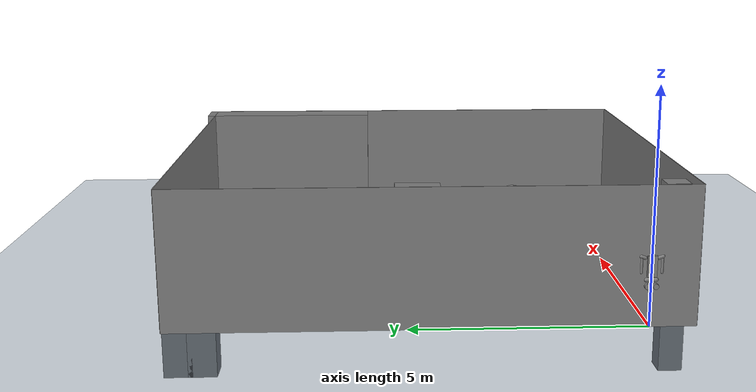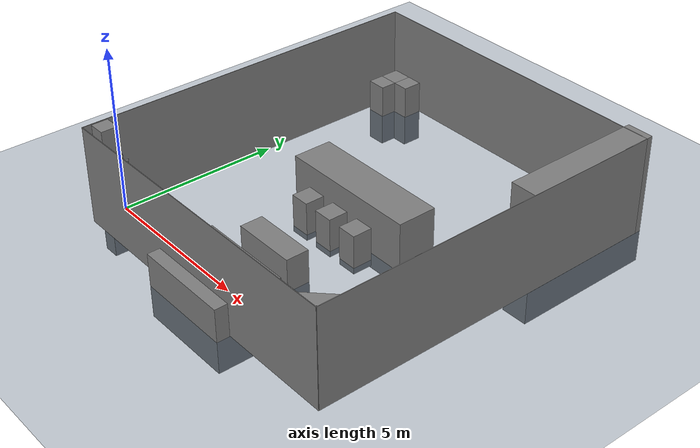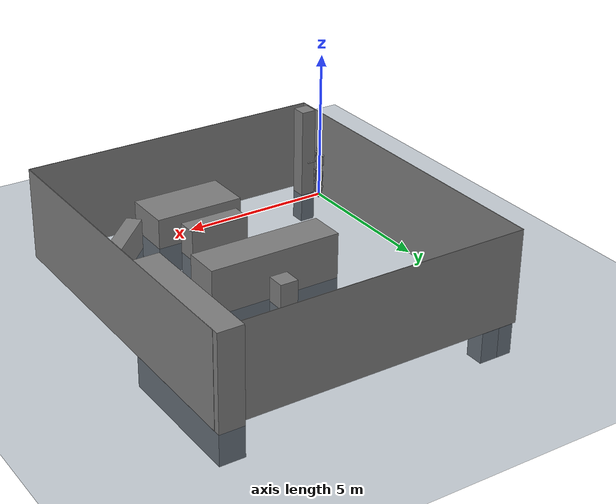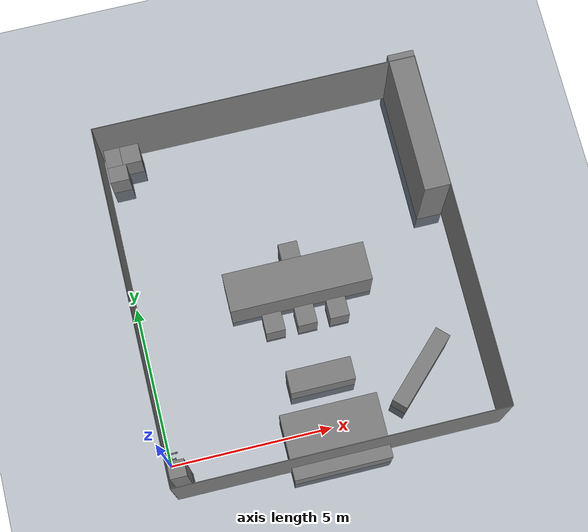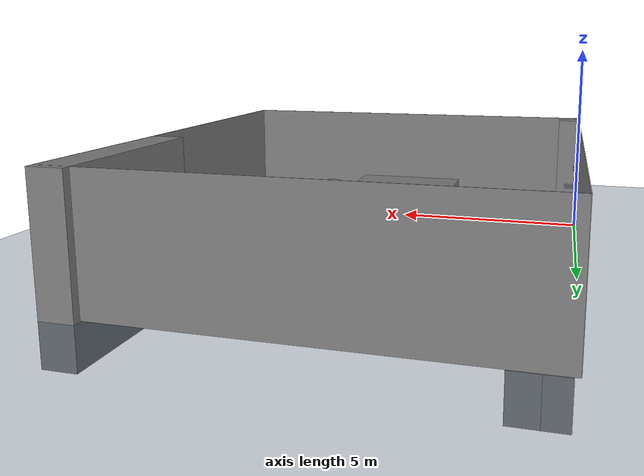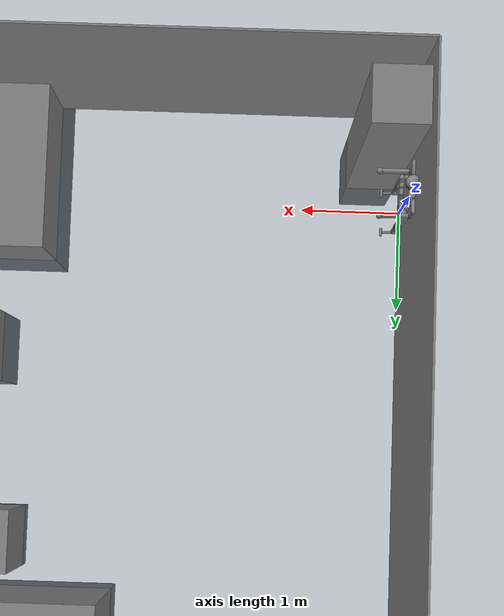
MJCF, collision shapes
<mujoco model="h1 scene">
  <include file="h1.xml"/>

  <statistic center="0 0 1" extent="1.8"/>

  <visual>
    <headlight diffuse="0.6 0.6 0.6" ambient="0.3 0.3 0.3" specular="0 0 0"/>
    <rgba haze="0.15 0.25 0.35 1"/>
    <global azimuth="160" elevation="-20"/>
  </visual>

  <asset>
    <texture type="skybox" builtin="gradient" rgb1="0.3 0.5 0.7" rgb2="0 0 0" width="512" height="3072"/>
    <texture type="2d" name="groundplane" builtin="checker" mark="edge" rgb1="0.2 0.3 0.4" rgb2="0.1 0.2 0.3"
      markrgb="0.8 0.8 0.8" width="300" height="300"/>
    <material name="groundplane" texture="groundplane" texuniform="true" texrepeat="5 5" reflectance="0.2"/>
  </asset>

  <worldbody>
    <light pos="0 0 3.5" dir="0 0 -1" directional="true"/>
    <geom name="floor" size="0 0 0.05" type="plane" material="groundplane"/>

    <geom name="wall1" type="box" size="0.01 5.5 1.5" pos="10 4.5 1.5"/> <!-- right wall -->
    <geom name="wall2" type="box" size="0.01 5.5 1.5" pos="-0 4.5 1.5"/> <!-- left wall-->
    <geom name="wall3" type="box" size="5 0.01 1.5" pos="5 -1 1.5"/> <!-- low wall -->
    <geom name="wall4" type="box" size="5 0.01 1.5" pos="5 10 1.5"/> <!-- high wall -->

    <geom name="sofa_cover" type="box" size="1.5 1.0 1" pos="5 -0.4 0"/>
    <geom name="side_table2_cover" type="box" size="1.0 0.35 1.0" pos="5 1.5 0"/>
    <geom name="side_table3_cover" type="box" size="1.3 0.25 1.0" pos="8 1 0" euler="0 0 0.785398"/>
    <geom name="table2_cover" type="box" size="2.2 0.6 1.0" pos="5 4.5 0.5"/>
    <geom name="book_shelf_cover" type="box" size="0.4 2.2 2.0" pos="9.6 8.0 1.0"/>
    <geom name="pot1_cover" type="box" size="0.3 0.3 1.0" pos="0.4 9.7 0"/>
    <geom name="pot2_cover" type="box" size="0.3 0.3 1.0" pos="0.9 9.7 0"/>
    <geom name="pot3_cover" type="box" size="0.3 0.3 1.0" pos="0.4 9.2 0"/>
    <geom name="coat_hanger_cover" type="box" size="0.25 0.25 2" pos="0.3 -0.5 1"/>

    <geom name="chair1_cover" type="box" size="0.3 0.3 0.6" pos="4 3.4 0.4"/>
    <geom name="chair2_cover" type="box" size="0.3 0.3 0.6" pos="5 3.4 0.4"/>
    <geom name="chair3_cover" type="box" size="0.3 0.3 0.6" pos="6 3.4 0.4"/>
    <geom name="boss_chair_cover" type="box" size="0.3 0.3 0.8" pos="5 5.5 0"/>

  </worldbody>

  <keyframe>
    <key name="home"
      qpos="
    1.5 0 0.98
    0.7071068 0 0 0.7071068
    0 0 -0.4 0.8 -0.4
    0 0 -0.4 0.8 -0.4
    0
    0 0 0 0
    0 0 0 0"/>
  </keyframe>
</mujoco>

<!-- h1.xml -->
<mujoco model="h1">
  <compiler angle="radian" meshdir="assets" autolimits="true"/>

  <statistic meansize="0.05"/>

  <default>
    <default class="h1">
      <joint damping="1" armature="0.1"/>
      <default class="visual">
        <geom type="mesh" contype="0" conaffinity="0" group="2" material="black"/>
      </default>
      <default class="collision">
        <geom group="3" mass="0" density="0"/>
        <default class="foot">
          <geom type="capsule" size=".014"/>
          <default class="foot1">
            <geom fromto="-.035 0 -0.056 .02 0 -0.045"/>
          </default>
          <default class="foot2">
            <geom fromto=".02 0 -0.045 .115 0 -0.056"/>
          </default>
          <default class="foot3">
            <geom fromto=".14 -.03 -0.056 .14 .03 -0.056"/>
          </default>
        </default>
      </default>
      <site size="0.001" rgba="0.5 0.5 0.5 0.3" group="4"/>
    </default>
  </default>

  <asset>
    <material name="black" rgba="0.1 0.1 0.1 1"/>
    <material name="white" rgba="1 1 1 1"/>

    <mesh file="pelvis.stl"/>
    <mesh file="left_hip_yaw_link.stl"/>
    <mesh file="left_hip_roll_link.stl"/>
    <mesh file="left_hip_pitch_link.stl"/>
    <mesh file="left_knee_link.stl"/>
    <mesh file="left_ankle_link.stl"/>
    <mesh file="right_hip_yaw_link.stl"/>
    <mesh file="right_hip_roll_link.stl"/>
    <mesh file="right_hip_pitch_link.stl"/>
    <mesh file="right_knee_link.stl"/>
    <mesh file="right_ankle_link.stl"/>
    <mesh file="torso_link.stl"/>
    <mesh file="left_shoulder_pitch_link.stl"/>
    <mesh file="left_shoulder_roll_link.stl"/>
    <mesh file="left_shoulder_yaw_link.stl"/>
    <mesh file="left_elbow_link.stl"/>
    <mesh file="right_shoulder_pitch_link.stl"/>
    <mesh file="right_shoulder_roll_link.stl"/>
    <mesh file="right_shoulder_yaw_link.stl"/>
    <mesh file="right_elbow_link.stl"/>
    <mesh file="logo_link.stl"/>
  </asset>

  <worldbody>
    <light mode="targetbodycom" target="torso_link" pos="2 0 2.5"/>
    <body name="pelvis" pos="0 0 1.06" childclass="h1">
      <!-- Added the following line with respect to the mujoco_menagerie unutree H1 in order to be able to create the body_velocimeter sensor  -->
      <site name="com" pos="0 0 0" rgba="1 0 0 0" size="0.01"/>
      <camera name="cam_default" pos="2 3 0.8" mode="trackcom" xyaxes="-1 0.5 0 -0.2 -0.2 1"/>

      <inertial pos="-0.0002 4e-05 -0.04522" quat="0.498303 0.499454 -0.500496 0.501741" mass="5.39"
        diaginertia="0.0490211 0.0445821 0.00824619"/>
      <freejoint/>
      <geom class="visual" mesh="pelvis"/>
      <body name="left_hip_yaw_link" pos="0 0.0875 -0.1742">
        <inertial pos="-0.04923 0.0001 0.0072" quat="0.69699 0.219193 0.233287 0.641667" mass="2.244"
          diaginertia="0.00304494 0.00296885 0.00189201"/>
        <joint name="left_hip_yaw" axis="0 0 1" range="-0.43 0.43"/>
        <geom class="visual" mesh="left_hip_yaw_link"/>
        <geom size="0.06 0.035" pos="-0.067 0 0" quat="0.707123 0 0.70709 0" type="cylinder" class="collision"/>
        <body name="left_hip_roll_link" pos="0.039468 0 0">
          <inertial pos="-0.0058 -0.00319 -9e-05" quat="0.0438242 0.70721 -0.0729075 0.701867" mass="2.232"
            diaginertia="0.00243264 0.00225325 0.00205492"/>
          <joint name="left_hip_roll" axis="1 0 0" range="-0.43 0.43"/>
          <geom class="visual" mesh="left_hip_roll_link"/>
          <geom class="collision" type="cylinder" size="0.05 0.03" quat="1 1 0 0" pos="0 -0.02 0"/>
          <body name="left_hip_pitch_link" pos="0 0.11536 0">
            <inertial pos="0.00746 -0.02346 -0.08193" quat="0.979828 0.0513522 -0.0169854 -0.192382" mass="4.152"
              diaginertia="0.0829503 0.0821457 0.00510909"/>
            <joint name="left_hip_pitch" axis="0 1 0" range="-1.57 1.57"/>
            <geom class="visual" mesh="left_hip_pitch_link"/>
            <geom class="collision" type="capsule" size="0.03" fromto="0.02 0 -0.4 -0.02 0 0.02"/>
            <geom class="collision" type="capsule" size="0.03" fromto="0.02 0 -0.4 0.02 0 0.02"/>
            <geom class="collision" type="cylinder" size="0.05 0.02" quat="1 1 0 0" pos="0 -0.07 0"/>
            <body name="left_knee_link" pos="0 0 -0.4">
              <inertial pos="-0.00136 -0.00512 -0.1384" quat="0.626132 -0.034227 -0.0416277 0.777852" mass="1.721"
                diaginertia="0.0125237 0.0123104 0.0019428"/>
              <joint name="left_knee" axis="0 1 0" range="-0.26 2.05"/>
              <geom class="visual" mesh="left_knee_link"/>
              <geom class="collision" type="capsule" size="0.025" fromto="0.02 0 -0.4 0.02 0 0"/>
              <geom class="collision" type="sphere" size="0.05" pos="0 0 -0.115"/>
              <body name="left_ankle_link" pos="0 0 -0.4">
                <inertial pos="0.06722 0.00015 -0.04497" quat="0.489101 0.503197 0.565782 0.432972" mass="0.446"
                  diaginertia="0.00220848 0.00218961 0.000214202"/>
                <joint name="left_ankle" axis="0 1 0" range="-0.87 0.52"/>
                <geom class="visual" mesh="left_ankle_link"/>
                <geom class="foot1"/>
                <geom class="foot2"/>
                <geom class="foot3"/>
              </body>
            </body>
          </body>
        </body>
      </body>
      <body name="right_hip_yaw_link" pos="0 -0.0875 -0.1742">
        <inertial pos="-0.04923 -0.0001 0.0072" quat="0.641667 0.233287 0.219193 0.69699" mass="2.244"
          diaginertia="0.00304494 0.00296885 0.00189201"/>
        <joint name="right_hip_yaw" axis="0 0 1" range="-0.43 0.43"/>
        <geom class="visual" mesh="right_hip_yaw_link"/>
        <geom size="0.06 0.035" pos="-0.067 0 0" quat="0.707123 0 0.70709 0" type="cylinder" class="collision"/>
        <body name="right_hip_roll_link" pos="0.039468 0 0">
          <inertial pos="-0.0058 0.00319 -9e-05" quat="-0.0438242 0.70721 0.0729075 0.701867" mass="2.232"
            diaginertia="0.00243264 0.00225325 0.00205492"/>
          <joint name="right_hip_roll" axis="1 0 0" range="-0.43 0.43"/>
          <geom class="visual" mesh="right_hip_roll_link"/>
          <geom class="collision" type="cylinder" size="0.05 0.03" quat="1 1 0 0" pos="0 0.02 0"/>
          <body name="right_hip_pitch_link" pos="0 -0.11536 0">
            <inertial pos="0.00746 0.02346 -0.08193" quat="0.979828 -0.0513522 -0.0169854 0.192382" mass="4.152"
              diaginertia="0.0829503 0.0821457 0.00510909"/>
            <joint name="right_hip_pitch" axis="0 1 0" range="-1.57 1.57"/>
            <geom class="visual" mesh="right_hip_pitch_link"/>
            <geom class="collision" type="capsule" size="0.03" fromto="0.02 0 -0.4 -0.02 0 0.02"/>
            <geom class="collision" type="capsule" size="0.03" fromto="0.02 0 -0.4 0.02 0 0.02"/>
            <geom class="collision" type="cylinder" size="0.05 0.02" quat="1 1 0 0" pos="0 0.07 0"/>
            <body name="right_knee_link" pos="0 0 -0.4">
              <inertial pos="-0.00136 0.00512 -0.1384" quat="0.777852 -0.0416277 -0.034227 0.626132" mass="1.721"
                diaginertia="0.0125237 0.0123104 0.0019428"/>
              <joint name="right_knee" axis="0 1 0" range="-0.26 2.05"/>
              <geom class="visual" mesh="right_knee_link"/>
              <geom class="collision" type="capsule" size="0.025" fromto="0.02 0 -0.4 0.02 0 0"/>
              <geom class="collision" type="sphere" size="0.05" pos="0 0 -0.115"/>
              <body name="right_ankle_link" pos="0 0 -0.4">
                <inertial pos="0.06722 -0.00015 -0.04497" quat="0.432972 0.565782 0.503197 0.489101" mass="0.446"
                  diaginertia="0.00220848 0.00218961 0.000214202"/>
                <joint name="right_ankle" axis="0 1 0" range="-0.87 0.52"/>
                <geom class="visual" mesh="right_ankle_link"/>
                <geom class="foot1"/>
                <geom class="foot2"/>
                <geom class="foot3"/>
              </body>
            </body>
          </body>
        </body>
      </body>
      <body name="torso_link">
        <inertial pos="0.000489 0.002797 0.20484" quat="0.999989 -0.00130808 -0.00282289 -0.00349105" mass="17.789"
          diaginertia="0.487315 0.409628 0.127837"/>
        <joint name="torso" axis="0 0 1" range="-2.35 2.35"/>
        <geom class="visual" mesh="torso_link"/>
        <geom class="visual" material="white" mesh="logo_link"/>
        <geom name="head" class="collision" type="capsule" size="0.06" fromto="0.05 0 0.68 0.05 0 0.6"/>
        <geom name="helmet" class="collision" type="sphere" size="0.073" pos="0.045 0 0.68"/>
        <geom name="torso" class="collision" type="box" size="0.07 0.1 0.22" pos="0 0 0.25"/>
        <geom name="hip" class="collision" type="capsule" size="0.05" fromto="0 -0.1 -0.05 0 0.1 -0.05"/>
        <site name="imu" pos="-0.04452 -0.01891 0.27756"/>
        <body name="left_shoulder_pitch_link" pos="0.0055 0.15535 0.42999" quat="0.976296 0.216438 0 0">
          <inertial pos="0.005045 0.053657 -0.015715" quat="0.814858 0.579236 -0.0201072 -0.00936488" mass="1.033"
            diaginertia="0.00129936 0.000987113 0.000858198"/>
          <geom class="visual" mesh="left_shoulder_pitch_link"/>
          <body name="left_shoulder_roll_link" pos="-0.0055 0.0565 -0.0165" quat="0.976296 -0.216438 0 0">
            <inertial pos="0.000679 0.00115 -0.094076" quat="0.732491 0.00917179 0.0766656 0.676384" mass="0.793"
              diaginertia="0.00170388 0.00158256 0.00100336"/>
            <geom class="visual" mesh="left_shoulder_roll_link"/>
            <geom name="left_shoulder" class="collision" type="capsule" size="0.04" fromto="0 0.01 0.008 0 -0.07 -0.02"/>
            <body name="left_shoulder_yaw_link" pos="0 0 -0.1343">
              <inertial pos="0.01365 0.002767 -0.16266" quat="0.703042 -0.0331229 -0.0473362 0.708798" mass="0.839"
                diaginertia="0.00408038 0.00370367 0.000622687"/>
              <geom class="visual" mesh="left_shoulder_yaw_link"/>
              <geom class="collision" type="capsule" size="0.03" fromto="0 0 0.15 0 0 -0.2"/>
              <body name="left_elbow_link" pos="0.0185 0 -0.198">
                <inertial pos="0.15908 -0.000144 -0.015776" quat="0.0765232 0.720327 0.0853116 0.684102" mass="0.669"
                  diaginertia="0.00601829 0.00600579 0.000408305"/>
                <geom class="visual" mesh="left_elbow_link"/>
                <geom class="collision" type="capsule" size="0.025" fromto="0 0 0 0.28 0 -0.015"/>
                <geom class="collision" type="sphere" size="0.033" pos="0.28 0 -0.015"/>
              </body>
            </body>
          </body>
        </body>
        <body name="right_shoulder_pitch_link" pos="0.0055 -0.15535 0.42999" quat="0.976296 -0.216438 0 0">
          <inertial pos="0.005045 -0.053657 -0.015715" quat="0.579236 0.814858 0.00936488 0.0201072" mass="1.033"
            diaginertia="0.00129936 0.000987113 0.000858198"/>
          <geom class="visual" mesh="right_shoulder_pitch_link"/>
          <body name="right_shoulder_roll_link" pos="-0.0055 -0.0565 -0.0165" quat="0.976296 0.216438 0 0">
            <inertial pos="0.000679 -0.00115 -0.094076" quat="0.676384 0.0766656 0.00917179 0.732491" mass="0.793"
              diaginertia="0.00170388 0.00158256 0.00100336"/>
            <geom class="visual" mesh="right_shoulder_roll_link"/>
            <geom name="right_shoulder" class="collision" type="capsule" size="0.04" fromto="0 -0.01 0.008 0 0.07 -0.02"/>
            <body name="right_shoulder_yaw_link" pos="0 0 -0.1343">
              <inertial pos="0.01365 -0.002767 -0.16266" quat="0.708798 -0.0473362 -0.0331229 0.703042" mass="0.839"
                diaginertia="0.00408038 0.00370367 0.000622687"/>
              <geom class="visual" mesh="right_shoulder_yaw_link"/>
              <geom class="collision" type="capsule" size="0.03" fromto="0 0 0.15 0 0 -0.2"/>
              <body name="right_elbow_link" pos="0.0185 0 -0.198">
                <inertial pos="0.15908 0.000144 -0.015776" quat="-0.0765232 0.720327 -0.0853116 0.684102" mass="0.669"
                  diaginertia="0.00601829 0.00600579 0.000408305"/>
                <geom class="visual" mesh="right_elbow_link"/>
                <geom class="collision" type="capsule" size="0.025" fromto="0 0 0 0.28 0 -0.015"/>
                <geom class="collision" type="sphere" size="0.033" pos="0.28 0 -0.015"/>
              </body>
            </body>
          </body>
        </body>
      </body>
    </body>
  </worldbody>

  <contact>
    <exclude body1="torso_link" body2="left_shoulder_roll_link"/>
    <exclude body1="torso_link" body2="right_shoulder_roll_link"/>
  </contact>

  <actuator>
    <motor class="h1" name="left_hip_yaw" joint="left_hip_yaw" ctrlrange="-200 200"/>
    <motor class="h1" name="left_hip_roll" joint="left_hip_roll" ctrlrange="-200 200"/>
    <motor class="h1" name="left_hip_pitch" joint="left_hip_pitch" ctrlrange="-200 200"/>
    <motor class="h1" name="left_knee" joint="left_knee" ctrlrange="-300 300"/>
    <motor class="h1" name="left_ankle" joint="left_ankle" ctrlrange="-40 40"/>
    <motor class="h1" name="right_hip_yaw" joint="right_hip_yaw" ctrlrange="-200 200"/>
    <motor class="h1" name="right_hip_roll" joint="right_hip_roll" ctrlrange="-200 200"/>
    <motor class="h1" name="right_hip_pitch" joint="right_hip_pitch" ctrlrange="-200 200"/>
    <motor class="h1" name="right_knee" joint="right_knee" ctrlrange="-300 300"/>
    <motor class="h1" name="right_ankle" joint="right_ankle" ctrlrange="-40 40"/>
    <motor class="h1" name="torso" joint="torso" ctrlrange="-200 200"/>
  </actuator>

  <sensor>
    <subtreelinvel name="pelvis_subtreelinvel" body="pelvis"/>
    <velocimeter name="body_velocimeter" site="com"/>
  </sensor>

</mujoco>
